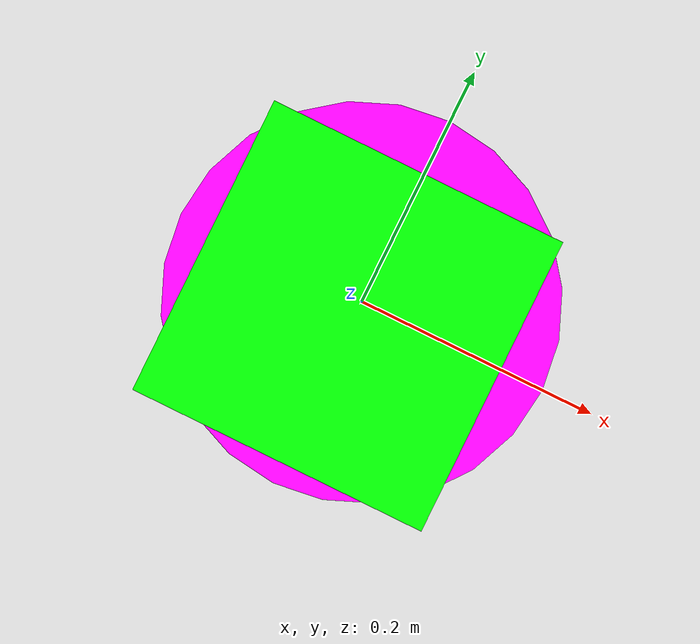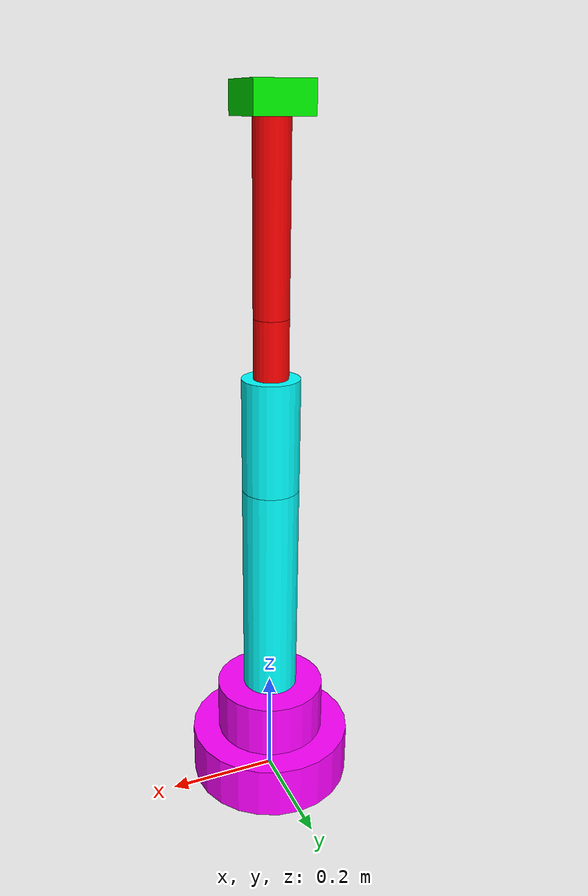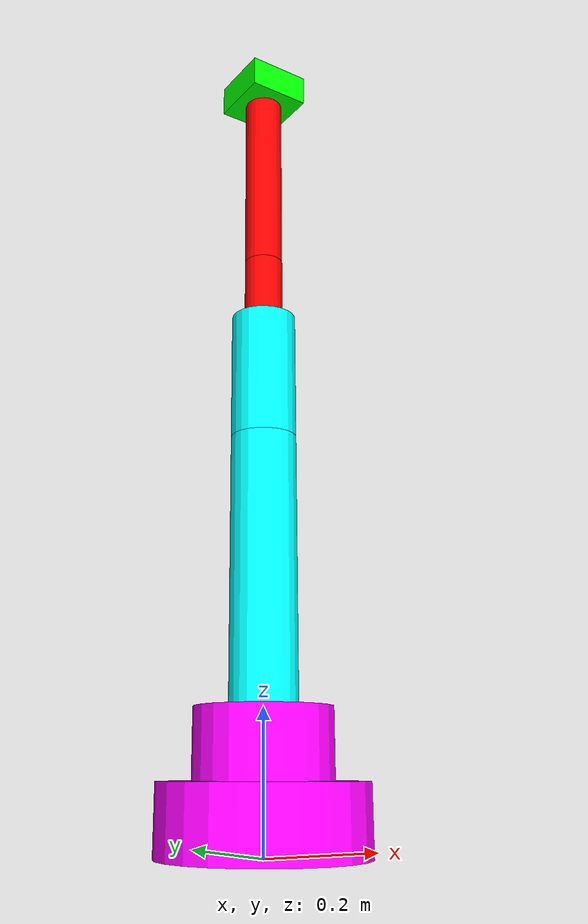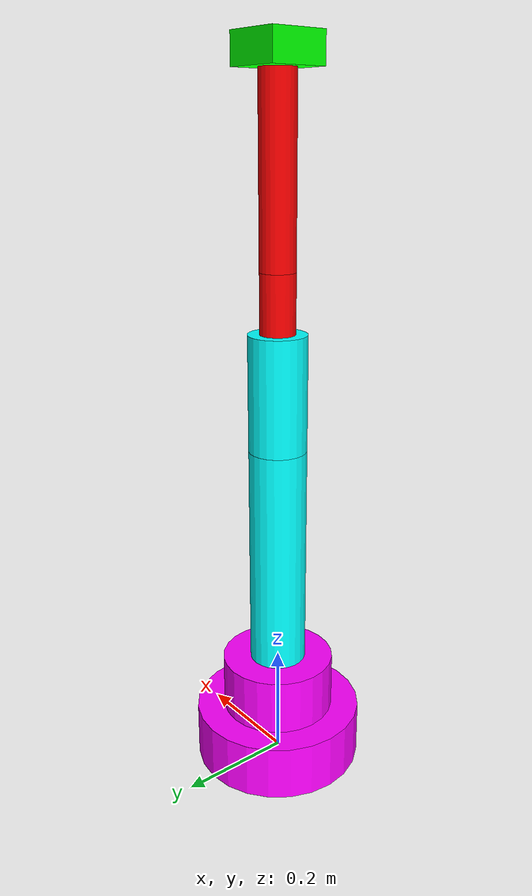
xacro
<?xml version="1.0"?>
<robot xmlns:xacro="http://www.ros.org/wiki/xacro" name="industrial">

<xacro:include filename="../macros/inertia.xacro"/>
<xacro:include filename="parameters.xacro"/>
<xacro:include filename="materials.urdf.xacro"/>

<xacro:macro name="arm_link" params="name length radius mass material">
<link name="${name}">
<inertial>
    <origin rpy="0 ${pi/2} 0" xyz="${length/2} 0 0"/>
    <mass value="${mass}"/>
    <xacro:cylinder_inertia_urdf mass="${mass}" radius="${radius}" length="${length}"/>
</inertial>
<visual>
    <geometry>
        <cylinder length="${length}" radius="${radius}"/>
    </geometry>
    <origin rpy="0 ${pi/2} 0" xyz="${length/2} 0 0"/>
    <material name="${material}"/>
</visual>
<collision>
    <geometry>
        <cylinder length="${length}" radius="${radius}"/>
    </geometry>
    <origin rpy="0 ${pi/2} 0" xyz="${length/2} 0 0"/>
</collision>
</link>
</xacro:macro>

<xacro:macro name="arm_joint" params="name axis distance parent child">
<joint name="${name}" type="revolute">
    <axis xyz="${axis}"/>
    <limit effort="1000.0" lower="${-pi}" upper="${pi}" velocity="10"/>
    <origin ryp="0 0 0" xyz="${distance} 0 0"/>
    <parent link="${parent}"/>
    <child link="${child}"/>
</joint>
<transmission name="${name}_tran">
    <type>transmission_interface/SimpleTransmission</type>
    <joint name="${name}">
        <hardwareInterface>hardware_interface/PositionJointInterface</hardwareInterface>
    </joint>
    <actuator name="${name}_actr">
        <hardwareInterface>hardware_interface/PositionJointInterface</hardwareInterface>
        <mechanicalReduction>1</mechanicalReduction>
    </actuator>
</transmission>
</xacro:macro>

<gazebo>
<joint name="world_fix" type="fixed">
    <pose>0 0 0 0 0 0</pose>
    <parent>world</parent>
    <child>base_link</child>
</joint>
</gazebo>

<link name="base_link"/>
<joint name="base_joint" type="fixed">
    <origin rpy="0 ${-pi/2} 0" xyz="0 0 0"/>
    <parent link="base_link"/>
    <child link="fixed_base"/>
</joint>

<xacro:arm_link name="fixed_base" length="${fixed_base_height}" radius="${fixed_base_radius}" mass="${fixed_base_mass}" material="base"/>

<xacro:arm_joint name="theta_1" axis="1 0 0" distance="${base_height}" parent="fixed_base" child="base"/>

<xacro:arm_link name="base" length="${base_height}" radius="${base_radius}" mass="${base_mass}" material="base"/>

<xacro:arm_joint name="theta_2" axis="0 1 0" distance="${base_height}" parent="base" child="lower"/>

<xacro:arm_link name="lower" length="${lower_length}" radius="${arm_radius}" mass="${lower_mass}" material="arm"/>

<xacro:arm_joint name="theta_3" axis="0 1 0" distance="${lower_length}" parent="lower" child="upper"/>

<xacro:arm_link name="upper" length="${upper_length}" radius="${arm_radius}" mass="${upper_mass}" material="arm"/>

<xacro:arm_joint name="theta_4" axis="1 0 0" distance="${upper_length}" parent="upper" child="wrist_roll"/>

<xacro:arm_link name="wrist_roll" length="${wrist_roll_length}" radius="${wrist_radius}" mass="${wrist_roll_mass}" material="wrist"/>

<xacro:arm_joint name="theta_5" axis="0 1 0" distance="${wrist_roll_length}" parent="wrist_roll" child="wrist_pitch"/>

<xacro:arm_link name="wrist_pitch" length="${wrist_pitch_length}" radius="${wrist_radius}" mass="${wrist_pitch_mass}" material="wrist"/>

<xacro:arm_joint name="theta_6" axis="1 0 0" distance="${wrist_pitch_length}" parent="wrist_pitch" child="tool_base"/>

<link name="tool_base">
<inertial>
    <origin rpy="0 ${pi/2} 0" xyz="${0.05/2} 0 0"/>
    <mass value="${tool_base_mass}"/>
    <xacro:box_inertia_urdf mass="${tool_base_mass}" w="0.1" h="0.1" d="0.05"/>
</inertial>
<visual>
    <geometry>
        <box size="0.1 0.1 0.05"/>
    </geometry>
    <origin rpy="0 ${pi/2} 0" xyz="${0.05/2} 0 0"/>
    <material name="tool"/>
</visual>
<collision>
    <geometry>
        <box size="0.1 0.1 0.05"/>
    </geometry>
    <origin rpy="0 ${pi/2} 0" xyz="${0.05/2} 0 0"/>
</collision>
</link>

<gazebo>
    <plugin name="gazebo_ros_control" filename="libgazebo_ros_control.so"/>
</gazebo>

</robot>

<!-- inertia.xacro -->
<robot xmlns:xacro="http://www.ros.org/wiki/xacro" name="delta_parameters">

<xacro:macro name="cylinder_inertia_urdf" params="mass radius length">
<inertia
    ixx="${mass*(radius**2/4 + length**2/12)}"
    iyy="${mass*(radius**2/4 + length**2/12)}"
    izz="${mass*(radius**2/2)}"
    ixy="0" ixz="0" iyz="0"
/>
</xacro:macro>

<xacro:macro name="box_inertia_urdf" params="mass w h d">
<inertia
    ixx="${mass*(h**2 + d**2)/12}"
    iyy="${mass*(w**2 + d**2)/12}"
    izz="${mass*(w**2 + h**2)/12}"
    ixy="0" ixz="0" iyz="0"
/>
</xacro:macro>

<xacro:macro name="cylinder_inertia_sdf" params="mass radius length">
<inertia>
    <ixx>${mass*(radius**2/4 + length**2/12)}</ixx>
    <iyy>${mass*(radius**2/4 + length**2/12)}</iyy>
    <izz>${mass*(radius**2/2)}</izz>
    <ixy>0</ixy> <ixz>0</ixz> <iyz>0</iyz>
</inertia>
</xacro:macro>

<xacro:macro name="box_inertia_sdf" params="mass w h d">
<inertia>
    <ixx>${mass*(h**2 + d**2)/12}</ixx>
    <iyy>${mass*(w**2 + d**2)/12}</iyy>
    <izz>${mass*(w**2 + h**2)/12}</izz>
    <ixy>0</ixy> <ixz>0</ixz> <iyz>0</iyz>
</inertia>
</xacro:macro>

</robot>

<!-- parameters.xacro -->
<robot xmlns:xacro="http://www.ros.org/wiki/xacro" name="delta_parameters">

<!-- Properties passed as arguments -->

<xacro:arg name="lower_length" default="0.4"/>
<xacro:property name="lower_length" value="$(arg lower_length)"/>

<xacro:arg name="upper_length" default="0.2"/>
<xacro:property name="upper_length" value="$(arg upper_length)"/>

<xacro:arg name="wrist_roll_length" default="0.1"/>
<xacro:property name="wrist_roll_length" value="$(arg wrist_roll_length)"/>

<xacro:arg name="wrist_pitch_length" default="0.3"/>
<xacro:property name="wrist_pitch_length" value="$(arg wrist_pitch_length)"/>

<!-- Other properties -->

<xacro:property name="fixed_base_radius" value="0.15"/>
<xacro:property name="fixed_base_height" value="0.1"/>
<xacro:property name="base_radius" value="0.1"/>
<xacro:property name="base_height" value="0.1"/>

<xacro:property name="arm_radius" value="0.05"/>
<xacro:property name="wrist_radius" value="0.03"/>

<xacro:property name="fixed_base_mass" value="0.5"/>
<xacro:property name="base_mass" value="0.5"/>
<xacro:property name="lower_mass" value="0.1"/>
<xacro:property name="upper_mass" value="0.1"/>
<xacro:property name="wrist_roll_mass" value="0.1"/>
<xacro:property name="wrist_pitch_mass" value="0.1"/>
<xacro:property name="tool_base_mass" value="0.1"/>

</robot>

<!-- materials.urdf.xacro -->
<robot xmlns:xacro="http://www.ros.org/wiki/xacro" name="delta_materials">

<material name="base">
    <color rgba="1 0 1 1"/>
</material>

<material name="arm">
    <color rgba="0 1 1 1"/>
</material>

<material name="wrist">
    <color rgba="1 0 0 1"/>
</material>

<material name="tool">
    <color rgba="0 1 0 1"/>
</material>

</robot>
